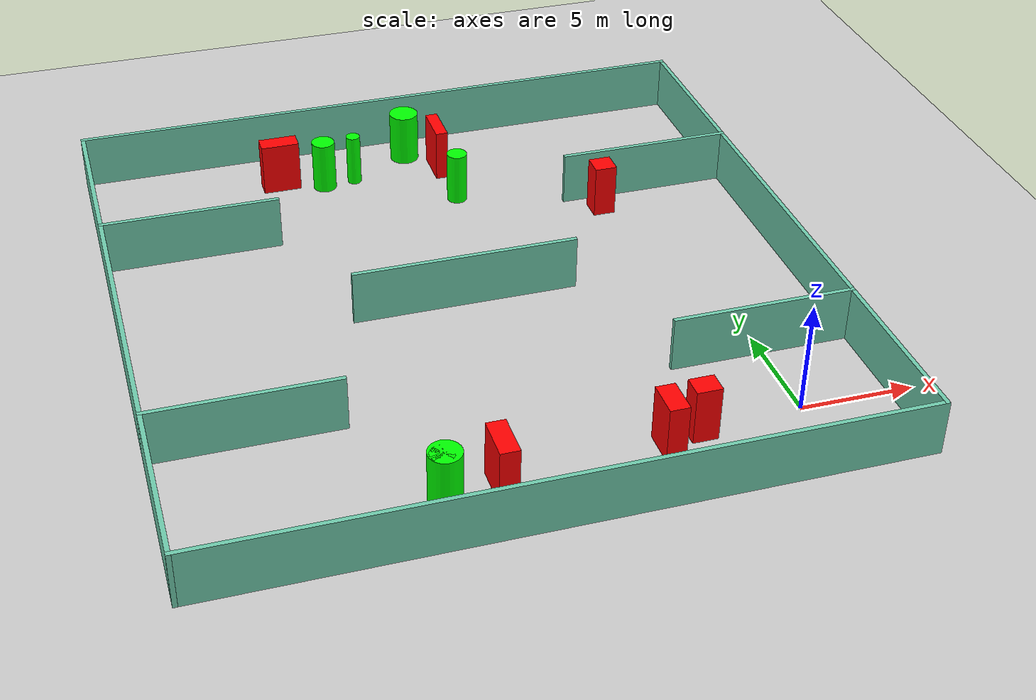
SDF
<sdf version="1.7">
 <world name="default">
  <light name="sun" type="directional">
   <pose>0 0 10 0 -0 0</pose>
   <diffuse>0.8 0.8 0.8 1</diffuse>
   <specular>0.2 0.2 0.2 1</specular>
   <attenuation>
    <range>1000</range>
    <constant>0.9</constant>
    <linear>0.01</linear>
    <quadratic>0.001</quadratic>
   </attenuation>
   <direction>-0.5 0.1 -0.9</direction>
   <spot><inner_angle>0</inner_angle><outer_angle>0</outer_angle><falloff>0</falloff></spot>
  </light>
  <model name="ground_plane">
   <static>1</static>
   <link name="link">
    <collision name="collision">
     <geometry><plane><normal>0 0 1</normal><size>100 100</size></plane></geometry>
     <surface>
      <contact><collide_bitmask>65535</collide_bitmask></contact>
      <friction><ode><mu>100</mu><mu2>50</mu2></ode></friction>
     </surface>
    </collision>
    <visual name="visual">
     <cast_shadows>0</cast_shadows>
     <geometry><plane><normal>0 0 1</normal><size>100 100</size></plane></geometry>
     <material>
      <script><uri>file://media/materials/scripts/gazebo.material</uri><name>Gazebo/Grey</name></script>
     </material>
    </visual>
   </link>
  </model>
  <gravity>0 0 -9.8</gravity>
  <magnetic_field>6e-06 2.3e-05 -4.2e-05</magnetic_field>
  <atmosphere type="adiabatic"/>
  <physics type="ode">
   <max_step_size>0.001</max_step_size>
   <real_time_factor>1</real_time_factor>
   <real_time_update_rate>1000</real_time_update_rate>
  </physics>
  <scene><ambient>0.4 0.4 0.4 1</ambient><background>0.7 0.7 0.7 1</background><shadows>1</shadows></scene>
  <spherical_coordinates>
   <surface_model>EARTH_WGS84</surface_model>
   <latitude_deg>0</latitude_deg>
   <longitude_deg>0</longitude_deg>
   <elevation>0</elevation>
   <heading_deg>0</heading_deg>
  </spherical_coordinates>
  <model name="my_base_walls">
   <link name="Wall_10">
    <collision name="Wall_10_Collision">
     <geometry><box><size>8.2 0.2 2.5</size></box></geometry>
     <pose>0 0 1.25 0 -0 0</pose>
    </collision>
    <visual name="Wall_10_Visual">
     <pose>0 0 1.25 0 -0 0</pose>
     <geometry><box><size>8.2 0.2 2.5</size></box></geometry>
     <material>
      <script><uri>file://media/materials/scripts/gazebo.material</uri><name>Gazebo/Grey</name></script>
      <ambient>0.435294 0.796078 0.67451 1</ambient>
     </material>
     <meta><layer>0</layer></meta>
    </visual>
    <pose>-11 -7 0 0 -0 0</pose>
   </link>
   <link name="Wall_12">
    <collision name="Wall_12_Collision">
     <geometry><box><size>8.2 0.2 2.5</size></box></geometry>
     <pose>0 0 1.25 0 -0 0</pose>
    </collision>
    <visual name="Wall_12_Visual">
     <pose>0 0 1.25 0 -0 0</pose>
     <geometry><box><size>8.2 0.2 2.5</size></box></geometry>
     <material>
      <script><uri>file://media/materials/scripts/gazebo.material</uri><name>Gazebo/Grey</name></script>
      <ambient>0.435294 0.796078 0.67451 1</ambient>
     </material>
     <meta><layer>0</layer></meta>
    </visual>
    <pose>-11 7 0 0 -0 0</pose>
   </link>
   <link name="Wall_14">
    <collision name="Wall_14_Collision">
     <geometry><box><size>8.2 0.2 2.5</size></box></geometry>
     <pose>0 0 1.25 0 -0 0</pose>
    </collision>
    <visual name="Wall_14_Visual">
     <pose>0 0 1.25 0 -0 0</pose>
     <geometry><box><size>8.2 0.2 2.5</size></box></geometry>
     <material>
      <script><uri>file://media/materials/scripts/gazebo.material</uri><name>Gazebo/Grey</name></script>
      <ambient>0.435294 0.796078 0.67451 1</ambient>
     </material>
     <meta><layer>0</layer></meta>
    </visual>
    <pose>11 7 0 0 -0 3.14159</pose>
   </link>
   <link name="Wall_16">
    <collision name="Wall_16_Collision">
     <geometry><box><size>10.2 0.2 2.5</size></box></geometry>
     <pose>0 0 1.25 0 -0 0</pose>
    </collision>
    <visual name="Wall_16_Visual">
     <pose>0 0 1.25 0 -0 0</pose>
     <geometry><box><size>10.2 0.2 2.5</size></box></geometry>
     <material>
      <script><uri>file://media/materials/scripts/gazebo.material</uri><name>Gazebo/Grey</name></script>
      <ambient>0.435294 0.796078 0.67451 1</ambient>
     </material>
     <meta><layer>0</layer></meta>
    </visual>
    <pose>0 0 0 0 -0 3.14159</pose>
   </link>
   <link name="Wall_2">
    <collision name="Wall_2_Collision">
     <geometry><box><size>30.2 0.2 2.5</size></box></geometry>
     <pose>0 0 1.25 0 -0 0</pose>
    </collision>
    <visual name="Wall_2_Visual">
     <pose>0 0 1.25 0 -0 0</pose>
     <geometry><box><size>30.2 0.2 2.5</size></box></geometry>
     <material>
      <script><uri>file://media/materials/scripts/gazebo.material</uri><name>Gazebo/Grey</name></script>
      <ambient>0.435294 0.796078 0.67451 1</ambient>
     </material>
     <meta><layer>0</layer></meta>
    </visual>
    <pose>0 -15 0 0 -0 3.14159</pose>
   </link>
   <link name="Wall_3">
    <collision name="Wall_3_Collision">
     <geometry><box><size>30.2 0.2 2.5</size></box></geometry>
     <pose>0 0 1.25 0 -0 0</pose>
    </collision>
    <visual name="Wall_3_Visual">
     <pose>0 0 1.25 0 -0 0</pose>
     <geometry><box><size>30.2 0.2 2.5</size></box></geometry>
     <material>
      <script><uri>file://media/materials/scripts/gazebo.material</uri><name>Gazebo/Grey</name></script>
      <ambient>0.435294 0.796078 0.67451 1</ambient>
     </material>
     <meta><layer>0</layer></meta>
    </visual>
    <pose>-15 0 0 0 -0 1.5708</pose>
   </link>
   <link name="Wall_4">
    <collision name="Wall_4_Collision">
     <geometry><box><size>30.2 0.2 2.5</size></box></geometry>
     <pose>0 0 1.25 0 -0 0</pose>
    </collision>
    <visual name="Wall_4_Visual">
     <pose>0 0 1.25 0 -0 0</pose>
     <geometry><box><size>30.2 0.2 2.5</size></box></geometry>
     <material>
      <script><uri>file://media/materials/scripts/gazebo.material</uri><name>Gazebo/Grey</name></script>
      <ambient>0.435294 0.796078 0.67451 1</ambient>
     </material>
     <meta><layer>0</layer></meta>
    </visual>
    <pose>0 15 0 0 -0 0</pose>
   </link>
   <link name="Wall_6">
    <collision name="Wall_6_Collision">
     <geometry><box><size>30.2 0.2 2.5</size></box></geometry>
     <pose>0 0 1.25 0 -0 0</pose>
    </collision>
    <visual name="Wall_6_Visual">
     <pose>0 0 1.25 0 -0 0</pose>
     <geometry><box><size>30.2 0.2 2.5</size></box></geometry>
     <material>
      <script><uri>file://media/materials/scripts/gazebo.material</uri><name>Gazebo/Grey</name></script>
      <ambient>0.435294 0.796078 0.67451 1</ambient>
     </material>
     <meta><layer>0</layer></meta>
    </visual>
    <pose>15 0 0 0 -0 1.5708</pose>
   </link>
   <link name="Wall_8">
    <collision name="Wall_8_Collision">
     <geometry><box><size>8.2 0.2 2.5</size></box></geometry>
     <pose>0 0 1.25 0 -0 0</pose>
    </collision>
    <visual name="Wall_8_Visual">
     <pose>0 0 1.25 0 -0 0</pose>
     <geometry><box><size>8.2 0.2 2.5</size></box></geometry>
     <material>
      <script><uri>file://media/materials/scripts/gazebo.material</uri><name>Gazebo/Grey</name></script>
      <ambient>0.435294 0.796078 0.67451 1</ambient>
     </material>
     <meta><layer>0</layer></meta>
    </visual>
    <pose>11 -7 0 0 -0 3.14159</pose>
   </link>
   <static>1</static>
   <pose>-11 11 0 0 -0 0</pose>
  </model>
  <model name="cylinder1">
   <static>1</static>
   <link name="link">
    <inertial>
     <mass>1</mass>
     <inertia><ixx>0.5</ixx><ixy>0</ixy><ixz>0</ixz><iyy>0.5</iyy><iyz>0</iyz><izz>1</izz></inertia>
    </inertial>
    <collision name="collision">
     <geometry><cylinder><radius>0.5132460887056094</radius><length>2.5</length></cylinder></geometry>
    </collision>
    <visual name="visual">
     <geometry><cylinder><radius>0.5132460887056094</radius><length>2.5</length></cylinder></geometry>
     <material>
      <ambient>0 1 0 1</ambient>
      <diffuse>0 1 0 1</diffuse>
      <specular>0.1 0.1 0.1 1</specular>
      <emissive>0 0 0 0</emissive>
     </material>
    </visual>
   </link>
   <pose>-15.500721280397379 -1.514409578557165 1.25 0 0 0</pose>
  </model>
  <model name="cylinder2">
   <static>1</static>
   <link name="link">
    <inertial>
     <mass>1</mass>
     <inertia><ixx>0.5</ixx><ixy>0</ixy><ixz>0</ixz><iyy>0.5</iyy><iyz>0</iyz><izz>1</izz></inertia>
    </inertial>
    <collision name="collision">
     <geometry><cylinder><radius>0.6987002840121797</radius><length>2.5</length></cylinder></geometry>
    </collision>
    <visual name="visual">
     <geometry><cylinder><radius>0.6987002840121797</radius><length>2.5</length></cylinder></geometry>
     <material>
      <ambient>0 1 0 1</ambient>
      <diffuse>0 1 0 1</diffuse>
      <specular>0.1 0.1 0.1 1</specular>
      <emissive>0 0 0 0</emissive>
     </material>
    </visual>
   </link>
   <pose>-15.381659432412736 -1.4460879288392343 1.25 0 0 0</pose>
  </model>
  <model name="cylinder3">
   <static>1</static>
   <link name="link">
    <inertial>
     <mass>1</mass>
     <inertia><ixx>0.5</ixx><ixy>0</ixy><ixz>0</ixz><iyy>0.5</iyy><iyz>0</iyz><izz>1</izz></inertia>
    </inertial>
    <collision name="collision">
     <geometry><cylinder><radius>0.5521936799160356</radius><length>2.5</length></cylinder></geometry>
    </collision>
    <visual name="visual">
     <geometry><cylinder><radius>0.5521936799160356</radius><length>2.5</length></cylinder></geometry>
     <material>
      <ambient>0 1 0 1</ambient>
      <diffuse>0 1 0 1</diffuse>
      <specular>0.1 0.1 0.1 1</specular>
      <emissive>0 0 0 0</emissive>
     </material>
    </visual>
   </link>
   <pose>-14.874604374458409 22.551928903109637 1.25 0 0 0</pose>
  </model>
  <model name="cylinder4">
   <static>1</static>
   <link name="link">
    <inertial>
     <mass>1</mass>
     <inertia><ixx>0.5</ixx><ixy>0</ixy><ixz>0</ixz><iyy>0.5</iyy><iyz>0</iyz><izz>1</izz></inertia>
    </inertial>
    <collision name="collision">
     <geometry><cylinder><radius>0.3365045978622612</radius><length>2.5</length></cylinder></geometry>
    </collision>
    <visual name="visual">
     <geometry><cylinder><radius>0.3365045978622612</radius><length>2.5</length></cylinder></geometry>
     <material>
      <ambient>0 1 0 1</ambient>
      <diffuse>0 1 0 1</diffuse>
      <specular>0.1 0.1 0.1 1</specular>
      <emissive>0 0 0 0</emissive>
     </material>
    </visual>
   </link>
   <pose>-13.363408429354575 22.689689049468367 1.25 0 0 0</pose>
  </model>
  <model name="cylinder5">
   <static>1</static>
   <link name="link">
    <inertial>
     <mass>1</mass>
     <inertia><ixx>0.5</ixx><ixy>0</ixy><ixz>0</ixz><iyy>0.5</iyy><iyz>0</iyz><izz>1</izz></inertia>
    </inertial>
    <collision name="collision">
     <geometry><cylinder><radius>0.6949549455703307</radius><length>2.5</length></cylinder></geometry>
    </collision>
    <visual name="visual">
     <geometry><cylinder><radius>0.6949549455703307</radius><length>2.5</length></cylinder></geometry>
     <material>
      <ambient>0 1 0 1</ambient>
      <diffuse>0 1 0 1</diffuse>
      <specular>0.1 0.1 0.1 1</specular>
      <emissive>0 0 0 0</emissive>
     </material>
    </visual>
   </link>
   <pose>-10.42449955761213 24.269085234786193 1.25 0 0 0</pose>
  </model>
  <model name="cylinder6">
   <static>1</static>
   <link name="link">
    <inertial>
     <mass>1</mass>
     <inertia><ixx>0.5</ixx><ixy>0</ixy><ixz>0</ixz><iyy>0.5</iyy><iyz>0</iyz><izz>1</izz></inertia>
    </inertial>
    <collision name="collision">
     <geometry><cylinder><radius>0.47820695886721176</radius><length>2.5</length></cylinder></geometry>
    </collision>
    <visual name="visual">
     <geometry><cylinder><radius>0.47820695886721176</radius><length>2.5</length></cylinder></geometry>
     <material>
      <ambient>0 1 0 1</ambient>
      <diffuse>0 1 0 1</diffuse>
      <specular>0.1 0.1 0.1 1</specular>
      <emissive>0 0 0 0</emissive>
     </material>
    </visual>
   </link>
   <pose>-8.953340740642664 19.67182429662244 1.25 0 0 0</pose>
  </model>
  <model name="box1">
   <static>1</static>
   <link name="link">
    <inertial>
     <mass>1</mass>
     <inertia><ixx>0.083</ixx><ixy>0</ixy><ixz>0</ixz><iyy>0.083</iyy><iyz>0</iyz><izz>0.083</izz></inertia>
    </inertial>
    <collision name="collision">
     <geometry><box><size>0.8358477337283063 1.922061510364169 2.5</size></box></geometry>
    </collision>
    <visual name="visual">
     <geometry><box><size>0.8358477337283063 1.922061510364169 2.5</size></box></geometry>
     <material>
      <ambient>1 0 0 1</ambient>
      <diffuse>1 0 0 1</diffuse>
      <specular>0.1 0.1 0.1 1</specular>
      <emissive>0 0 0 0</emissive>
     </material>
    </visual>
    <sensor name="my_contact" type="contact">
     <contact><collision>box_collision</collision><topic>__default_topic__</topic></contact>
    </sensor>
   </link>
   <pose>-13.065870715361589 -1.2123041715443952 1.25 0 0 0</pose>
  </model>
  <model name="box2">
   <static>1</static>
   <link name="link">
    <inertial>
     <mass>1</mass>
     <inertia><ixx>0.083</ixx><ixy>0</ixy><ixz>0</ixz><iyy>0.083</iyy><iyz>0</iyz><izz>0.083</izz></inertia>
    </inertial>
    <collision name="collision">
     <geometry><box><size>1.1088384276508736 0.9480626126918084 2.5</size></box></geometry>
    </collision>
    <visual name="visual">
     <geometry><box><size>1.1088384276508736 0.9480626126918084 2.5</size></box></geometry>
     <material>
      <ambient>1 0 0 1</ambient>
      <diffuse>1 0 0 1</diffuse>
      <specular>0.1 0.1 0.1 1</specular>
      <emissive>0 0 0 0</emissive>
     </material>
    </visual>
    <sensor name="my_contact" type="contact">
     <contact><collision>box_collision</collision><topic>__default_topic__</topic></contact>
    </sensor>
   </link>
   <pose>-4.51410279354436 -0.3664382117511358 1.25 0 0 0</pose>
  </model>
  <model name="box3">
   <static>1</static>
   <link name="link">
    <inertial>
     <mass>1</mass>
     <inertia><ixx>0.083</ixx><ixy>0</ixy><ixz>0</ixz><iyy>0.083</iyy><iyz>0</iyz><izz>0.083</izz></inertia>
    </inertial>
    <collision name="collision">
     <geometry><box><size>0.5803117057452439 2.0086735167110215 2.5</size></box></geometry>
    </collision>
    <visual name="visual">
     <geometry><box><size>0.5803117057452439 2.0086735167110215 2.5</size></box></geometry>
     <material>
      <ambient>1 0 0 1</ambient>
      <diffuse>1 0 0 1</diffuse>
      <specular>0.1 0.1 0.1 1</specular>
      <emissive>0 0 0 0</emissive>
     </material>
    </visual>
    <sensor name="my_contact" type="contact">
     <contact><collision>box_collision</collision><topic>__default_topic__</topic></contact>
    </sensor>
   </link>
   <pose>-9.135023047904452 22.7405154509188 1.25 0 0 0</pose>
  </model>
  <model name="box4">
   <static>1</static>
   <link name="link">
    <inertial>
     <mass>1</mass>
     <inertia><ixx>0.083</ixx><ixy>0</ixy><ixz>0</ixz><iyy>0.083</iyy><iyz>0</iyz><izz>0.083</izz></inertia>
    </inertial>
    <collision name="collision">
     <geometry><box><size>0.8591432196524892 1.5983312515850585 2.5</size></box></geometry>
    </collision>
    <visual name="visual">
     <geometry><box><size>0.8591432196524892 1.5983312515850585 2.5</size></box></geometry>
     <material>
      <ambient>1 0 0 1</ambient>
      <diffuse>1 0 0 1</diffuse>
      <specular>0.1 0.1 0.1 1</specular>
      <emissive>0 0 0 0</emissive>
     </material>
    </visual>
    <sensor name="my_contact" type="contact">
     <contact><collision>box_collision</collision><topic>__default_topic__</topic></contact>
    </sensor>
   </link>
   <pose>-6.052161777942056 -0.7688389512615004 1.25 0 0 0</pose>
  </model>
  <model name="box5">
   <static>1</static>
   <link name="link">
    <inertial>
     <mass>1</mass>
     <inertia><ixx>0.083</ixx><ixy>0</ixy><ixz>0</ixz><iyy>0.083</iyy><iyz>0</iyz><izz>0.083</izz></inertia>
    </inertial>
    <collision name="collision">
     <geometry><box><size>1.0300697721227412 1.0291601990747115 2.5</size></box></geometry>
    </collision>
    <visual name="visual">
     <geometry><box><size>1.0300697721227412 1.0291601990747115 2.5</size></box></geometry>
     <material>
      <ambient>1 0 0 1</ambient>
      <diffuse>1 0 0 1</diffuse>
      <specular>0.1 0.1 0.1 1</specular>
      <emissive>0 0 0 0</emissive>
     </material>
    </visual>
    <sensor name="my_contact" type="contact">
     <contact><collision>box_collision</collision><topic>__default_topic__</topic></contact>
    </sensor>
   </link>
   <pose>-2.577982412126847 16.827661223808764 1.25 0 0 0</pose>
  </model>
  <model name="box6">
   <static>1</static>
   <link name="link">
    <inertial>
     <mass>1</mass>
     <inertia><ixx>0.083</ixx><ixy>0</ixy><ixz>0</ixz><iyy>0.083</iyy><iyz>0</iyz><izz>0.083</izz></inertia>
    </inertial>
    <collision name="collision">
     <geometry><box><size>1.8064334126247994 0.8572497193076064 2.5</size></box></geometry>
    </collision>
    <visual name="visual">
     <geometry><box><size>1.8064334126247994 0.8572497193076064 2.5</size></box></geometry>
     <material>
      <ambient>1 0 0 1</ambient>
      <diffuse>1 0 0 1</diffuse>
      <specular>0.1 0.1 0.1 1</specular>
      <emissive>0 0 0 0</emissive>
     </material>
    </visual>
    <sensor name="my_contact" type="contact">
     <contact><collision>box_collision</collision><topic>__default_topic__</topic></contact>
    </sensor>
   </link>
   <pose>-16.940878528524657 23.143308573005033 1.25 0 0 0</pose>
  </model>
 </world>
</sdf>
